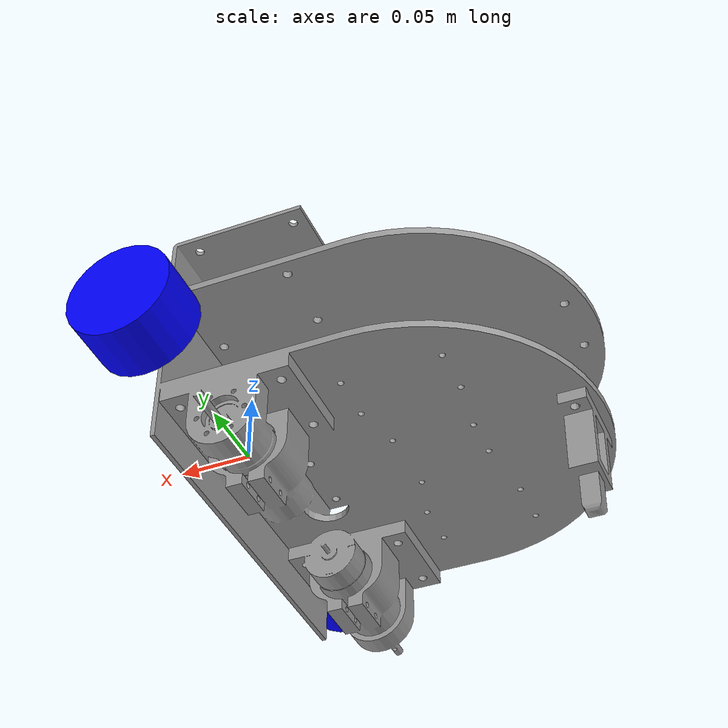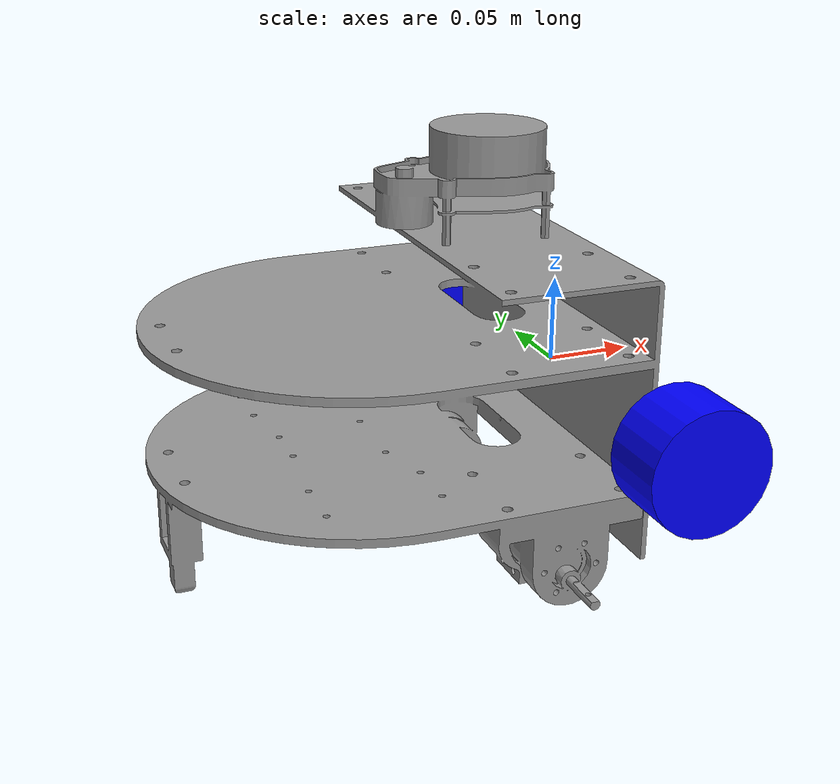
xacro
<?xml version="1.0" ?>
<robot name="rina" xmlns:xacro="http://www.ros.org/wiki/xacro" >

    <xacro:arg name="use_ros2_control" default="true"/>
    <xacro:arg name="sim_mode" default="false"/>

    <xacro:include filename="$(find robot)/urdf/robot.urdf.xacro" />
    <xacro:include filename="$(find robot)/urdf/inertial_macros.xacro" />
    <xacro:include filename="$(find robot)/urdf/sensors/lidar.xacro" />
    <xacro:include filename="$(find robot)/urdf/sensors/camera.xacro" />

    <xacro:if value="$(arg use_ros2_control)">
        <xacro:include filename="$(find robot)/urdf/control/ros2_control.xacro" />
    </xacro:if>
    <xacro:unless value="$(arg use_ros2_control)">
        <xacro:include filename="$(find robot)/urdf/control/gazebo_control.xacro" />
    </xacro:unless>

</robot>

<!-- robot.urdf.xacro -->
<robot name="ros" xmlns:xacro="http://www.ros.org/wiki/xacro">

<xacro:include filename="$(find robot)/urdf/materials.xacro" />
<xacro:include filename="$(find robot)/urdf/properties.xacro" />

<link name="base_footprint">

</link>

<joint name="footprint_joint" type="fixed">
  <parent link="base_link"/>
  <child link="base_footprint"/>
  <origin xyz="0.0 0.0 0.0" rpy="0.0 0.0 0.0"/>
</joint>

<link name="base_link">
  <inertial>
    <origin xyz="-0.028662948158421374 -9.161384338691405e-07 0.07830072749629308" rpy="0 0 0"/>
    <mass value="1.4490433383590837"/>
    <inertia ixx="0.013382" iyy="0.012" izz="0.01271" ixy="-0.0" iyz="-0.0" ixz="-0.000167"/>
  </inertial>
  <visual>
    <origin xyz="0 0 0" rpy="0 0 0"/>
    <geometry>
      <mesh filename="file://$(find robot)/meshes/base_link.stl" scale="0.001 0.001 0.001"/>
    </geometry>
    <material name="plastic_glossy_grey"/>
  </visual>
  <collision>
    <origin xyz="0 0 0" rpy="0 0 0"/>
    <geometry>
      <mesh filename="file://$(find robot)/meshes/base_link.stl" scale="0.001 0.001 0.001"/>
    </geometry>
  </collision>
</link>

<xacro:property name="wheel_radius" value="0.035"/>
<xacro:property name="wheel_thickness" value="0.04"/>
<xacro:property name="wheel_mass" value="12.0"/>
<xacro:property name="wheel_offset_x" value="0.226"/>
<xacro:property name="wheel_offset_y" value="0.155"/>
<xacro:property name="wheel_offset_z" value="0.01"/>

<link name="left_wheel">
    <visual>
        <geometry>
            <cylinder radius="${wheel_radius}" length="${wheel_thickness}"/>
        </geometry>
        <material name="blue"/>
        <origin xyz="0 0 0" rpy="0 0 0"/>
    </visual>
    <collision>
        <geometry>
            <sphere radius="${wheel_radius}"/>
        </geometry>
    </collision>
    <xacro:inertial_cylinder mass="${wheel_mass}" length="${wheel_thickness}" radius="${wheel_radius}">
        <origin xyz="0 0 0" rpy="0 0 0"/>
    </xacro:inertial_cylinder>
</link>

<link name="right_wheel">
    <visual>
        <geometry>
            <cylinder radius="${wheel_radius}" length="${wheel_thickness}"/>
        </geometry>
        <material name="blue"/>
    </visual>
    <collision>
        <geometry>
            <sphere radius="${wheel_radius}"/>
        </geometry>
    </collision>
    <xacro:inertial_cylinder mass="${wheel_mass}" length="${wheel_thickness}" radius="${wheel_radius}">
        <origin xyz="0 0 0" rpy="0 0 0"/>
    </xacro:inertial_cylinder>
</link>

<!-- counter weight is invisible -->
<link name="counter_weight">
    <collision>
        <geometry>
            <box size="0.03 0.04 0.05"/>
        </geometry>
    </collision>
    <xacro:inertial_box mass="1.0" x="0.03" y="0.04" z="0.05">
      <origin xyz="${0.03/2} 0 ${0.05/2}" rpy="0 0 0"/>
    </xacro:inertial_box>
</link>

<joint name="left_wheel_joint" type="continuous">
    <parent link="base_link"/>
    <child link="left_wheel"/>
    <origin xyz="0 ${wheel_offset_y} 0" rpy="-${pi/2} 0 0" />
    <axis xyz="0 0 1"/>
</joint>

<joint name="right_wheel_joint" type="continuous">
    <parent link="base_link"/>
    <child link="right_wheel"/>
    <origin xyz="0 ${-wheel_offset_y} 0" rpy="${pi/2} 0 0" />
    <axis xyz="0 0 -1"/>
</joint>

<joint name="counter_joint" type="fixed">
  <origin xyz="-0.17 0.0 0.071" rpy="0.0 0.0 0.0"/>
  <parent link="base_link"/>
  <child link="counter_weight"/>
</joint>

</robot>

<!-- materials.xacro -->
<robot name="ros" xmlns:xacro="http://www.ros.org/wiki/xacro" >

<material name="silver">
  <color rgba="0.700 0.700 0.700 1.000"/>
</material>

<material name="black">
  <color rgba="0 0 0 1"/>
</material>

<material name="white">
  <color rgba="1 1 1 1"/>
</material>

<material name="red">
  <color rgba="1 0 0 1"/>
</material>

<material name="green">
  <color rgba="0 1 0 1"/>
</material>

<material name="blue">
  <color rgba="0 0 1 1"/>
</material>

</robot>

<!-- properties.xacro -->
<robot name="ros" xmlns:xacro="http://www.ros.org/wiki/xacro" >

<xacro:property name="body_color" value="Gazebo/Silver" />

<gazebo reference="base_link">
  <material>${body_color}</material>
</gazebo>

<gazebo reference="left_wheel_1">
  <material>${body_color}</material>
  <mu1>0.2</mu1>
  <mu2>0.2</mu2>
</gazebo>

<gazebo reference="right_wheel_1">
  <material>${body_color}</material>
  <mu1>0.2</mu1>
  <mu2>0.2</mu2>
</gazebo>

<gazebo reference="laser_frame">
  <material>Gazebo/Black</material>
</gazebo>

</robot>

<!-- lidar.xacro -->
<robot xmlns:xacro="http://www.ros.org/wiki/xacro">

<link name="lidar_link">
</link>

<joint name="laser_joint" type="fixed">
    <parent link="base_link"/>
    <child link="lidar_link"/>
    <origin xyz="-0.05 0 0.13" rpy="0 0 0"/>
</joint>

<gazebo reference="laser_link">
    <material>Gazebo/Black</material>

    <sensor name="laser" type="ray">
        <pose> 0 0 0 0 0 0 </pose>
        <visualize>false</visualize>
        <update_rate>10</update_rate>
        <ray>
            <scan>
                <horizontal>
                    <samples>360</samples>
                    <min_angle>-3.14</min_angle>
                    <max_angle>3.14</max_angle>
                </horizontal>
            </scan>
            <range>
                <min>0.3</min>
                <max>12</max>
            </range>
        </ray>
        <plugin name="laser_controller" filename="libgazebo_ros_ray_sensor.so">
            <ros>
                <argument>~/out:=scan</argument>
            </ros>
            <output_type>sensor_msgs/LaserScan</output_type>
            <frame_name>lidar_link</frame_name>
        </plugin>
    </sensor>
</gazebo>

</robot>

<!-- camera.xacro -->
<robot xmlns:xacro="http://www.ros.org/wiki/xacro">

<joint name="camera_joint" type="fixed">
    <origin xyz="0.0 0.0 0.0" rpy="0.0 0.0 0.0"/>
    <parent link="base_link"/>
    <child link="camera_link"/>
</joint>

<link name="camera_link">
    <inertial>
        <origin xyz="0.0 0.0 0.0" rpy="0.0 0.0 0.0"/>
        <mass value="0.0"/>
        <inertia ixx="0.0" ixy="0.0" ixz="0.0" iyy="0.0" iyz="0.0" izz="0.0"/>
    </inertial>
    <visual name="">
        <origin xyz="0.0 0.0 0.0" rpy="0.0 0.0 0.0"/>
        <geometry>
            <box size="0.0 0.0 0.0"/>
        </geometry>
        <material name="">
            <color rgba="1.0 0.0 0.0 1.0"/>
            <texture filename=""/>
        </material>
    </visual>
    <collision>
        <origin xyz="0.0 0.0 0.0" rpy="0.0 0.0 0.0"/>
        <geometry>
            <box size="0.0 0.0 0.0"/>
        </geometry>
    </collision>
</link>

</robot>
